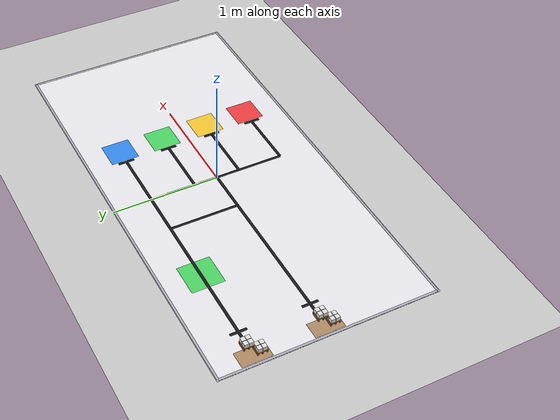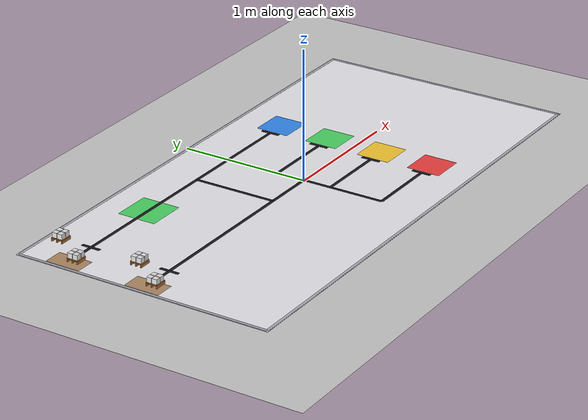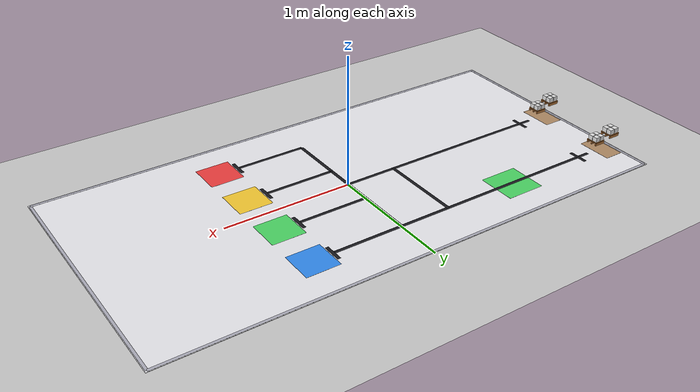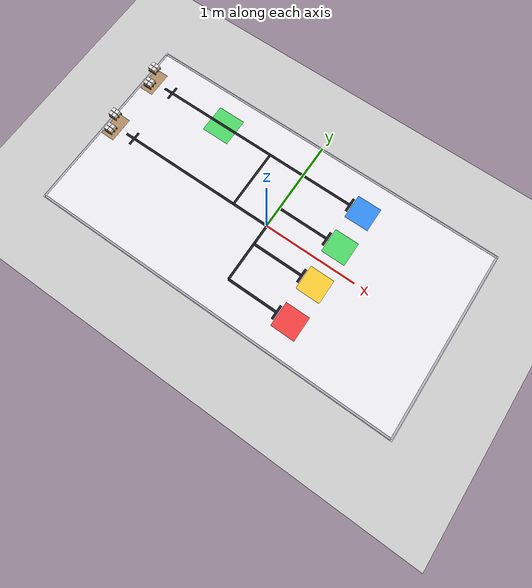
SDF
<sdf version="1.8">
 <world name="default">
  <physics name="1ms" type="ignored">
   <max_step_size>0.001</max_step_size>
   <real_time_factor>1.0</real_time_factor>
  </physics>
  <plugin filename="ignition-gazebo-physics-system" name="ignition::gazebo::systems::Physics"/>
  <plugin filename="ignition-gazebo-user-commands-system" name="ignition::gazebo::systems::UserCommands"/>
  <plugin filename="ignition-gazebo-scene-broadcaster-system" name="ignition::gazebo::systems::SceneBroadcaster"/>
  <plugin filename="ignition-gazebo-contact-system" name="ignition::gazebo::systems::Contact"/>
  <plugin filename="ignition-gazebo-sensors-system" name="ignition::gazebo::systems::Sensors">
   <render_engine>ogre2</render_engine>
  </plugin>
  <light type="directional" name="sun">
   <cast_shadows>false</cast_shadows>
   <pose>0 0 10 0 0 0</pose>
   <diffuse>0.9 0.9 0.9 1</diffuse>
   <specular>0.2 0.2 0.2 1</specular>
   <attenuation>
    <range>1000</range>
    <constant>0.9</constant>
    <linear>0.01</linear>
    <quadratic>0.001</quadratic>
   </attenuation>
   <direction>-0.5 0.1 -0.9</direction>
  </light>
  <model name="ground_plane">
   <static>true</static>
   <link name="link">
    <collision name="collision">
     <geometry><plane><normal>0 0 1</normal><size>100 100</size></plane></geometry>
     <surface><friction><ode><mu>1.0</mu><mu2>1.0</mu2></ode></friction></surface>
    </collision>
    <visual name="visual">
     <geometry><plane><normal>0 0 1</normal><size>100 100</size></plane></geometry>
     <material>
      <ambient>0.8 0.8 0.8 1</ambient>
      <diffuse>0.8 0.8 0.8 1</diffuse>
      <specular>0.8 0.8 0.8 1</specular>
     </material>
    </visual>
   </link>
  </model>
  <include><uri>model://arena_floor</uri><pose>0 0 0.0025 0 0 0</pose></include>
  <include>
   <uri>model://pallet_aluminum</uri>
   <name>pallet_aluminum_rack1_b_left</name>
   <pose>-1.894 0.580 0.0285 0 0 1.5708</pose>
  </include>
  <include>
   <uri>model://pallet_cpu</uri>
   <name>pallet_cpu_rack1_t_right</name>
   <pose>-1.894 0.700 0.1485 0 0 1.5708</pose>
  </include>
  <include>
   <uri>model://pallet_qr</uri>
   <name>pallet_qr_rack2_b_left</name>
   <pose>-1.894 -0.060 0.0285 0 0 1.5708</pose>
  </include>
  <include>
   <uri>model://pallet_chip</uri>
   <name>pallet_chip_rack2_t_right</name>
   <pose>-1.894 0.060 0.1485 0 0 1.5708</pose>
  </include>
 </world>
</sdf>

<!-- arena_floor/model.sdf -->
<sdf version="1.8">
  <model name="arena_floor">
    <static>true</static>
    <link name="link">

      <!-- 1. BASE FLOOR COLLISION & MAIN SLAB                                  -->
      <collision name="collision_floor">
        <pose>0 0 0.001 0 0 0</pose>
        <geometry>
          <box>
            <size>4.0 2.0 0.002</size>
          </box>
        </geometry>
        <surface>
          <friction>
            <ode>
              <mu>1.0</mu>
              <mu2>1.0</mu2>
            </ode>
          </friction>
        </surface>
      </collision>

      <!-- Main Floor Slab Visual (Clean Bright Canvas) -->
      <visual name="visual_floor_slab">
        <pose>0 0 0.001 0 0 0</pose>
        <geometry>
          <box>
            <size>4.0 2.0 0.002</size>
          </box>
        </geometry>
        <material>
          <ambient>0.93 0.93 0.95 1.0</ambient>
          <diffuse>0.93 0.93 0.95 1.0</diffuse>
          <specular>0.1 0.1 0.1 1.0</specular>
        </material>
      </visual>

      <!-- Outer Boundary Border -->
      <visual name="visual_border_north">
        <pose>0 0.985 0.0022 0 0 0</pose>
        <geometry><box><size>3.97 0.02 0.0003</size></box></geometry>
        <material><ambient>0.7 0.7 0.75 1</ambient><diffuse>0.7 0.7 0.75 1</diffuse></material>
      </visual>
      <visual name="visual_border_south">
        <pose>0 -0.985 0.0022 0 0 0</pose>
        <geometry><box><size>3.97 0.02 0.0003</size></box></geometry>
        <material><ambient>0.7 0.7 0.75 1</ambient><diffuse>0.7 0.7 0.75 1</diffuse></material>
      </visual>
      <visual name="visual_border_west">
        <pose>-1.985 0 0.0022 0 0 0</pose>
        <geometry><box><size>0.02 1.97 0.0003</size></box></geometry>
        <material><ambient>0.7 0.7 0.75 1</ambient><diffuse>0.7 0.7 0.75 1</diffuse></material>
      </visual>
      <visual name="visual_border_east">
        <pose>1.985 0 0.0022 0 0 0</pose>
        <geometry><box><size>0.02 1.97 0.0003</size></box></geometry>
        <material><ambient>0.7 0.7 0.75 1</ambient><diffuse>0.7 0.7 0.75 1</diffuse></material>
      </visual>

      <!-- 2. NAVIGATION TRACK LINES (Pure Geometric Black Boxes)                -->
      <!-- Lane 1 (Horizontal: Y = 0.640m, from X = -1.75m to X = +0.55m) -->
      <visual name="visual_line_lane1">
        <pose>-0.600 0.640 0.0023 0 0 0</pose>
        <geometry><box><size>2.300 0.025 0.0004</size></box></geometry>
        <material><ambient>0.10 0.10 0.12 1</ambient><diffuse>0.10 0.10 0.12 1</diffuse></material>
      </visual>

      <!-- Lane 2 (Horizontal: Y = 0.000m, from X = -1.75m to X = 0.00m) -->
      <visual name="visual_line_lane2">
        <pose>-0.875 0.000 0.0023 0 0 0</pose>
        <geometry><box><size>1.750 0.025 0.0004</size></box></geometry>
        <material><ambient>0.10 0.10 0.12 1</ambient><diffuse>0.10 0.10 0.12 1</diffuse></material>
      </visual>

      <!-- Central Switch Lane (Vertical: X = -0.400m, from Y = 0.00m to Y = +0.64m) -->
      <visual name="visual_line_switch">
        <pose>-0.400 0.320 0.0023 0 0 0</pose>
        <geometry><box><size>0.025 0.640 0.0004</size></box></geometry>
        <material><ambient>0.10 0.10 0.12 1</ambient><diffuse>0.10 0.10 0.12 1</diffuse></material>
      </visual>

      <!-- Distribution Trunk (Vertical: X = 0.000m, from Y = -0.64m to Y = +0.64m) -->
      <visual name="visual_line_dist_trunk">
        <pose>0.000 0.000 0.0023 0 0 0</pose>
        <geometry><box><size>0.025 1.280 0.0004</size></box></geometry>
        <material><ambient>0.10 0.10 0.12 1</ambient><diffuse>0.10 0.10 0.12 1</diffuse></material>
      </visual>

      <!-- Branch to Drop-Off Zone 2 (CPU: Y = +0.220m, from X = 0.00m to X = +0.55m) -->
      <visual name="visual_line_branch_z2">
        <pose>0.275 0.220 0.0023 0 0 0</pose>
        <geometry><box><size>0.550 0.025 0.0004</size></box></geometry>
        <material><ambient>0.10 0.10 0.12 1</ambient><diffuse>0.10 0.10 0.12 1</diffuse></material>
      </visual>

      <!-- Branch to Drop-Off Zone 3 (QR: Y = -0.220m, from X = 0.00m to X = +0.55m) -->
      <visual name="visual_line_branch_z3">
        <pose>0.275 -0.220 0.0023 0 0 0</pose>
        <geometry><box><size>0.550 0.025 0.0004</size></box></geometry>
        <material><ambient>0.10 0.10 0.12 1</ambient><diffuse>0.10 0.10 0.12 1</diffuse></material>
      </visual>

      <!-- Branch to Drop-Off Zone 4 (Chip: Y = -0.640m, from X = 0.00m to X = +0.55m) -->
      <visual name="visual_line_branch_z4">
        <pose>0.275 -0.640 0.0023 0 0 0</pose>
        <geometry><box><size>0.550 0.025 0.0004</size></box></geometry>
        <material><ambient>0.10 0.10 0.12 1</ambient><diffuse>0.10 0.10 0.12 1</diffuse></material>
      </visual>

      <!-- 3. STOP BARS (Cross indicator lines)                                 -->
      <!-- Stop Bar - Rack 1 -->
      <visual name="visual_stop_rack1">
        <pose>-1.650 0.640 0.0024 0 0 0</pose>
        <geometry><box><size>0.025 0.150 0.0005</size></box></geometry>
        <material><ambient>0.10 0.10 0.12 1</ambient><diffuse>0.10 0.10 0.12 1</diffuse></material>
      </visual>

      <!-- Stop Bar - Rack 2 -->
      <visual name="visual_stop_rack2">
        <pose>-1.650 0.000 0.0024 0 0 0</pose>
        <geometry><box><size>0.025 0.150 0.0005</size></box></geometry>
        <material><ambient>0.10 0.10 0.12 1</ambient><diffuse>0.10 0.10 0.12 1</diffuse></material>
      </visual>

      <!-- Stop Bar - Drop-off Zone 1 -->
      <visual name="visual_stop_drop1">
        <pose>0.550 0.640 0.0024 0 0 0</pose>
        <geometry><box><size>0.025 0.150 0.0005</size></box></geometry>
        <material><ambient>0.10 0.10 0.12 1</ambient><diffuse>0.10 0.10 0.12 1</diffuse></material>
      </visual>

      <!-- Stop Bar - Drop-off Zone 2 -->
      <visual name="visual_stop_drop2">
        <pose>0.550 0.220 0.0024 0 0 0</pose>
        <geometry><box><size>0.025 0.150 0.0005</size></box></geometry>
        <material><ambient>0.10 0.10 0.12 1</ambient><diffuse>0.10 0.10 0.12 1</diffuse></material>
      </visual>

      <!-- Stop Bar - Drop-off Zone 3 -->
      <visual name="visual_stop_drop3">
        <pose>0.550 -0.220 0.0024 0 0 0</pose>
        <geometry><box><size>0.025 0.150 0.0005</size></box></geometry>
        <material><ambient>0.10 0.10 0.12 1</ambient><diffuse>0.10 0.10 0.12 1</diffuse></material>
      </visual>

      <!-- Stop Bar - Drop-off Zone 4 -->
      <visual name="visual_stop_drop4">
        <pose>0.550 -0.640 0.0024 0 0 0</pose>
        <geometry><box><size>0.025 0.150 0.0005</size></box></geometry>
        <material><ambient>0.10 0.10 0.12 1</ambient><diffuse>0.10 0.10 0.12 1</diffuse></material>
      </visual>

      <!-- 4. RACK FOOTPRINTS & START ZONE                                      -->
      <!-- Rack 1 Base Area -->
      <visual name="visual_rack1_pad">
        <pose>-1.894 0.640 0.0021 0 0 0</pose>
        <geometry><box><size>0.15 0.27 0.0002</size></box></geometry>
        <material><ambient>0.65 0.50 0.35 1</ambient><diffuse>0.70 0.55 0.40 1</diffuse></material>
      </visual>

      <!-- Rack 2 Base Area -->
      <visual name="visual_rack2_pad">
        <pose>-1.894 0.000 0.0021 0 0 0</pose>
        <geometry><box><size>0.15 0.27 0.0002</size></box></geometry>
        <material><ambient>0.65 0.50 0.35 1</ambient><diffuse>0.70 0.55 0.40 1</diffuse></material>
      </visual>

      <!-- START ZONE (Green Pad at X = -0.985, Y = 0.640) -->
      <visual name="visual_start_pad">
        <pose>-0.985 0.640 0.0021 0 0 0</pose>
        <geometry><box><size>0.30 0.30 0.0002</size></box></geometry>
        <material><ambient>0.25 0.80 0.35 1</ambient><diffuse>0.30 0.85 0.40 1</diffuse></material>
      </visual>

      <!-- 5. 4 DROP-OFF ZONES                                                  -->
      <!-- Zone 1: Aluminum (Blue: X = +0.700, Y = +0.640) -->
      <visual name="visual_drop_zone1">
        <pose>0.700 0.640 0.0021 0 0 0</pose>
        <geometry><box><size>0.26 0.26 0.0002</size></box></geometry>
        <material><ambient>0.15 0.50 0.90 1</ambient><diffuse>0.20 0.55 0.95 1</diffuse></material>
      </visual>

      <!-- Zone 2: CPU (Green: X = +0.700, Y = +0.220) -->
      <visual name="visual_drop_zone2">
        <pose>0.700 0.220 0.0021 0 0 0</pose>
        <geometry><box><size>0.26 0.26 0.0002</size></box></geometry>
        <material><ambient>0.25 0.80 0.35 1</ambient><diffuse>0.30 0.85 0.40 1</diffuse></material>
      </visual>

      <!-- Zone 3: QR Code (Yellow: X = +0.700, Y = -0.220) -->
      <visual name="visual_drop_zone3">
        <pose>0.700 -0.220 0.0021 0 0 0</pose>
        <geometry><box><size>0.26 0.26 0.0002</size></box></geometry>
        <material><ambient>0.95 0.75 0.15 1</ambient><diffuse>0.98 0.80 0.20 1</diffuse></material>
      </visual>

      <!-- Zone 4: Chip (Red: X = +0.700, Y = -0.640) -->
      <visual name="visual_drop_zone4">
        <pose>0.700 -0.640 0.0021 0 0 0</pose>
        <geometry><box><size>0.26 0.26 0.0002</size></box></geometry>
        <material><ambient>0.90 0.20 0.20 1</ambient><diffuse>0.95 0.25 0.25 1</diffuse></material>
      </visual>

    </link>
  </model>
</sdf>

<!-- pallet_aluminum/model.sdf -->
<sdf version="1.8">
  <model name="pallet_aluminum">
    <static>false</static>
    <link name="link">
      <inertial>
        <mass>0.25</mass>
        <inertia>
          <ixx>0.0003</ixx>
          <ixy>0</ixy>
          <ixz>0</ixz>
          <iyy>0.0003</iyy>
          <iyz>0</iyz>
          <izz>0.0004</izz>
        </inertia>
      </inertial>

      <!-- ==================== PALLET STRUCTURE (PRIMITIVE BOXES) ==================== -->
      <!-- Pallet Top Deck Visual -->
      <visual name="visual_deck">
        <pose>0 0 0.023 0 0 0</pose>
        <geometry>
          <box>
            <size>0.09 0.09 0.006</size>
          </box>
        </geometry>
        <material>
          <ambient>0.75 0.5 0.25 1.0</ambient>
          <diffuse>0.82 0.55 0.28 1.0</diffuse>
          <specular>0.1 0.1 0.1 1.0</specular>
        </material>
      </visual>

      <!-- Pallet Foot 1 (Left Runner: 10mm width) -->
      <visual name="visual_foot_1">
        <pose>-0.040 0 0.010 0 0 0</pose>
        <geometry>
          <box>
            <size>0.010 0.09 0.020</size>
          </box>
        </geometry>
        <material>
          <ambient>0.65 0.42 0.20 1.0</ambient>
          <diffuse>0.72 0.46 0.22 1.0</diffuse>
          <specular>0.1 0.1 0.1 1.0</specular>
        </material>
      </visual>

      <!-- Pallet Foot 2 (Middle Runner: 10mm width) -->
      <visual name="visual_foot_2">
        <pose>0 0 0.010 0 0 0</pose>
        <geometry>
          <box>
            <size>0.010 0.09 0.020</size>
          </box>
        </geometry>
        <material>
          <ambient>0.65 0.42 0.20 1.0</ambient>
          <diffuse>0.72 0.46 0.22 1.0</diffuse>
          <specular>0.1 0.1 0.1 1.0</specular>
        </material>
      </visual>

      <!-- Pallet Foot 3 (Right Runner: 10mm width) -->
      <visual name="visual_foot_3">
        <pose>0.040 0 0.010 0 0 0</pose>
        <geometry>
          <box>
            <size>0.010 0.09 0.020</size>
          </box>
        </geometry>
        <material>
          <ambient>0.65 0.42 0.20 1.0</ambient>
          <diffuse>0.72 0.46 0.22 1.0</diffuse>
          <specular>0.1 0.1 0.1 1.0</specular>
        </material>
      </visual>

      <!-- ==================== PALLET COLLISIONS ==================== -->
      <!-- Pallet Top Deck Collision -->
      <collision name="collision_deck">
        <pose>0 0 0.023 0 0 0</pose>
        <geometry>
          <box>
            <size>0.09 0.09 0.006</size>
          </box>
        </geometry>
        <surface>
          <friction>
            <ode>
              <mu>1.2</mu>
              <mu2>1.2</mu2>
            </ode>
          </friction>
        </surface>
      </collision>

      <!-- Pallet Foot Collisions (Left, Middle, Right Runners: 10mm) -->
      <collision name="collision_foot_1">
        <pose>-0.040 0 0.010 0 0 0</pose>
        <geometry>
          <box>
            <size>0.010 0.09 0.020</size>
          </box>
        </geometry>
      </collision>
      <collision name="collision_foot_2">
        <pose>0 0 0.010 0 0 0</pose>
        <geometry>
          <box>
            <size>0.010 0.09 0.020</size>
          </box>
        </geometry>
      </collision>
      <collision name="collision_foot_3">
        <pose>0.040 0 0.010 0 0 0</pose>
        <geometry>
          <box>
            <size>0.010 0.09 0.020</size>
          </box>
        </geometry>
      </collision>

      <!-- ==================== 4 GOODS BLOCKS VISUALS ==================== -->
      <!-- Block 1: Front-Left -->
      <visual name="visual_block_1">
        <pose>-0.021 -0.021 0.0452 0 0 0</pose>
        <geometry>
          <box>
            <size>0.038 0.038 0.038</size>
          </box>
        </geometry>
        <material>
          <ambient>0.9 0.9 0.9 1.0</ambient>
          <diffuse>0.9 0.9 0.9 1.0</diffuse>
          <pbr>
            <metal>
              <albedo_map>model://pallet_aluminum/materials/textures/block_0.png</albedo_map>
              <roughness>0.3</roughness>
              <metalness>0.0</metalness>
            </metal>
          </pbr>
        </material>
      </visual>

      <!-- Block 2: Front-Right -->
      <visual name="visual_block_2">
        <pose>0.021 -0.021 0.0452 0 0 0</pose>
        <geometry>
          <box>
            <size>0.038 0.038 0.038</size>
          </box>
        </geometry>
        <material>
          <ambient>0.9 0.9 0.9 1.0</ambient>
          <diffuse>0.9 0.9 0.9 1.0</diffuse>
          <pbr>
            <metal>
              <albedo_map>model://pallet_aluminum/materials/textures/block_0.png</albedo_map>
              <roughness>0.3</roughness>
              <metalness>0.0</metalness>
            </metal>
          </pbr>
        </material>
      </visual>

      <!-- Block 3: Rear-Left -->
      <visual name="visual_block_3">
        <pose>-0.021 0.021 0.0452 0 0 0</pose>
        <geometry>
          <box>
            <size>0.038 0.038 0.038</size>
          </box>
        </geometry>
        <material>
          <ambient>0.9 0.9 0.9 1.0</ambient>
          <diffuse>0.9 0.9 0.9 1.0</diffuse>
          <pbr>
            <metal>
              <albedo_map>model://pallet_aluminum/materials/textures/block_0.png</albedo_map>
              <roughness>0.3</roughness>
              <metalness>0.0</metalness>
            </metal>
          </pbr>
        </material>
      </visual>

      <!-- Block 4: Rear-Right -->
      <visual name="visual_block_4">
        <pose>0.021 0.021 0.0452 0 0 0</pose>
        <geometry>
          <box>
            <size>0.038 0.038 0.038</size>
          </box>
        </geometry>
        <material>
          <ambient>0.9 0.9 0.9 1.0</ambient>
          <diffuse>0.9 0.9 0.9 1.0</diffuse>
          <pbr>
            <metal>
              <albedo_map>model://pallet_aluminum/materials/textures/block_0.png</albedo_map>
              <roughness>0.3</roughness>
              <metalness>0.0</metalness>
            </metal>
          </pbr>
        </material>
      </visual>

      <!-- Consolidated Collision for All 4 Blocks (Ultra-Fast Physics Solver) -->
      <collision name="collision_blocks">
        <pose>0 0 0.0452 0 0 0</pose>
        <geometry>
          <box>
            <size>0.08 0.08 0.038</size>
          </box>
        </geometry>
      </collision>
    </link>
  </model>
</sdf>

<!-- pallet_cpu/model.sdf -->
<sdf version="1.8">
  <model name="pallet_cpu">
    <static>false</static>
    <link name="link">
      <inertial>
        <mass>0.25</mass>
        <inertia>
          <ixx>0.0003</ixx>
          <ixy>0</ixy>
          <ixz>0</ixz>
          <iyy>0.0003</iyy>
          <iyz>0</iyz>
          <izz>0.0004</izz>
        </inertia>
      </inertial>

      <!-- ==================== PALLET STRUCTURE (PRIMITIVE BOXES) ==================== -->
      <!-- Pallet Top Deck Visual -->
      <visual name="visual_deck">
        <pose>0 0 0.023 0 0 0</pose>
        <geometry>
          <box>
            <size>0.09 0.09 0.006</size>
          </box>
        </geometry>
        <material>
          <ambient>0.75 0.5 0.25 1.0</ambient>
          <diffuse>0.82 0.55 0.28 1.0</diffuse>
          <specular>0.1 0.1 0.1 1.0</specular>
        </material>
      </visual>

      <!-- Pallet Foot 1 (Left Runner: 10mm width) -->
      <visual name="visual_foot_1">
        <pose>-0.040 0 0.010 0 0 0</pose>
        <geometry>
          <box>
            <size>0.010 0.09 0.020</size>
          </box>
        </geometry>
        <material>
          <ambient>0.65 0.42 0.20 1.0</ambient>
          <diffuse>0.72 0.46 0.22 1.0</diffuse>
          <specular>0.1 0.1 0.1 1.0</specular>
        </material>
      </visual>

      <!-- Pallet Foot 2 (Middle Runner: 10mm width) -->
      <visual name="visual_foot_2">
        <pose>0 0 0.010 0 0 0</pose>
        <geometry>
          <box>
            <size>0.010 0.09 0.020</size>
          </box>
        </geometry>
        <material>
          <ambient>0.65 0.42 0.20 1.0</ambient>
          <diffuse>0.72 0.46 0.22 1.0</diffuse>
          <specular>0.1 0.1 0.1 1.0</specular>
        </material>
      </visual>

      <!-- Pallet Foot 3 (Right Runner: 10mm width) -->
      <visual name="visual_foot_3">
        <pose>0.040 0 0.010 0 0 0</pose>
        <geometry>
          <box>
            <size>0.010 0.09 0.020</size>
          </box>
        </geometry>
        <material>
          <ambient>0.65 0.42 0.20 1.0</ambient>
          <diffuse>0.72 0.46 0.22 1.0</diffuse>
          <specular>0.1 0.1 0.1 1.0</specular>
        </material>
      </visual>

      <!-- ==================== PALLET COLLISIONS ==================== -->
      <!-- Pallet Top Deck Collision -->
      <collision name="collision_deck">
        <pose>0 0 0.023 0 0 0</pose>
        <geometry>
          <box>
            <size>0.09 0.09 0.006</size>
          </box>
        </geometry>
        <surface>
          <friction>
            <ode>
              <mu>1.2</mu>
              <mu2>1.2</mu2>
            </ode>
          </friction>
        </surface>
      </collision>

      <!-- Pallet Foot Collisions (Left, Middle, Right Runners: 10mm) -->
      <collision name="collision_foot_1">
        <pose>-0.040 0 0.010 0 0 0</pose>
        <geometry>
          <box>
            <size>0.010 0.09 0.020</size>
          </box>
        </geometry>
      </collision>
      <collision name="collision_foot_2">
        <pose>0 0 0.010 0 0 0</pose>
        <geometry>
          <box>
            <size>0.010 0.09 0.020</size>
          </box>
        </geometry>
      </collision>
      <collision name="collision_foot_3">
        <pose>0.040 0 0.010 0 0 0</pose>
        <geometry>
          <box>
            <size>0.010 0.09 0.020</size>
          </box>
        </geometry>
      </collision>

      <!-- ==================== 4 GOODS BLOCKS VISUALS ==================== -->
      <!-- Block 1: Front-Left -->
      <visual name="visual_block_1">
        <pose>-0.021 -0.021 0.0452 0 0 0</pose>
        <geometry>
          <box>
            <size>0.038 0.038 0.038</size>
          </box>
        </geometry>
        <material>
          <ambient>0.9 0.9 0.9 1.0</ambient>
          <diffuse>0.9 0.9 0.9 1.0</diffuse>
          <pbr>
            <metal>
              <albedo_map>model://pallet_cpu/materials/textures/block_1.png</albedo_map>
              <roughness>0.3</roughness>
              <metalness>0.0</metalness>
            </metal>
          </pbr>
        </material>
      </visual>

      <!-- Block 2: Front-Right -->
      <visual name="visual_block_2">
        <pose>0.021 -0.021 0.0452 0 0 0</pose>
        <geometry>
          <box>
            <size>0.038 0.038 0.038</size>
          </box>
        </geometry>
        <material>
          <ambient>0.9 0.9 0.9 1.0</ambient>
          <diffuse>0.9 0.9 0.9 1.0</diffuse>
          <pbr>
            <metal>
              <albedo_map>model://pallet_cpu/materials/textures/block_1.png</albedo_map>
              <roughness>0.3</roughness>
              <metalness>0.0</metalness>
            </metal>
          </pbr>
        </material>
      </visual>

      <!-- Block 3: Rear-Left -->
      <visual name="visual_block_3">
        <pose>-0.021 0.021 0.0452 0 0 0</pose>
        <geometry>
          <box>
            <size>0.038 0.038 0.038</size>
          </box>
        </geometry>
        <material>
          <ambient>0.9 0.9 0.9 1.0</ambient>
          <diffuse>0.9 0.9 0.9 1.0</diffuse>
          <pbr>
            <metal>
              <albedo_map>model://pallet_cpu/materials/textures/block_1.png</albedo_map>
              <roughness>0.3</roughness>
              <metalness>0.0</metalness>
            </metal>
          </pbr>
        </material>
      </visual>

      <!-- Block 4: Rear-Right -->
      <visual name="visual_block_4">
        <pose>0.021 0.021 0.0452 0 0 0</pose>
        <geometry>
          <box>
            <size>0.038 0.038 0.038</size>
          </box>
        </geometry>
        <material>
          <ambient>0.9 0.9 0.9 1.0</ambient>
          <diffuse>0.9 0.9 0.9 1.0</diffuse>
          <pbr>
            <metal>
              <albedo_map>model://pallet_cpu/materials/textures/block_1.png</albedo_map>
              <roughness>0.3</roughness>
              <metalness>0.0</metalness>
            </metal>
          </pbr>
        </material>
      </visual>

      <!-- Consolidated Collision for All 4 Blocks (Ultra-Fast Physics Solver) -->
      <collision name="collision_blocks">
        <pose>0 0 0.0452 0 0 0</pose>
        <geometry>
          <box>
            <size>0.08 0.08 0.038</size>
          </box>
        </geometry>
      </collision>
    </link>
  </model>
</sdf>

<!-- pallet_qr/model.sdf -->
<sdf version="1.8">
  <model name="pallet_qr">
    <static>false</static>
    <link name="link">
      <inertial>
        <mass>0.25</mass>
        <inertia>
          <ixx>0.0003</ixx>
          <ixy>0</ixy>
          <ixz>0</ixz>
          <iyy>0.0003</iyy>
          <iyz>0</iyz>
          <izz>0.0004</izz>
        </inertia>
      </inertial>

      <!-- ==================== PALLET STRUCTURE (PRIMITIVE BOXES) ==================== -->
      <!-- Pallet Top Deck Visual -->
      <visual name="visual_deck">
        <pose>0 0 0.023 0 0 0</pose>
        <geometry>
          <box>
            <size>0.09 0.09 0.006</size>
          </box>
        </geometry>
        <material>
          <ambient>0.75 0.5 0.25 1.0</ambient>
          <diffuse>0.82 0.55 0.28 1.0</diffuse>
          <specular>0.1 0.1 0.1 1.0</specular>
        </material>
      </visual>

      <!-- Pallet Foot 1 (Left Runner: 10mm width) -->
      <visual name="visual_foot_1">
        <pose>-0.040 0 0.010 0 0 0</pose>
        <geometry>
          <box>
            <size>0.010 0.09 0.020</size>
          </box>
        </geometry>
        <material>
          <ambient>0.65 0.42 0.20 1.0</ambient>
          <diffuse>0.72 0.46 0.22 1.0</diffuse>
          <specular>0.1 0.1 0.1 1.0</specular>
        </material>
      </visual>

      <!-- Pallet Foot 2 (Middle Runner: 10mm width) -->
      <visual name="visual_foot_2">
        <pose>0 0 0.010 0 0 0</pose>
        <geometry>
          <box>
            <size>0.010 0.09 0.020</size>
          </box>
        </geometry>
        <material>
          <ambient>0.65 0.42 0.20 1.0</ambient>
          <diffuse>0.72 0.46 0.22 1.0</diffuse>
          <specular>0.1 0.1 0.1 1.0</specular>
        </material>
      </visual>

      <!-- Pallet Foot 3 (Right Runner: 10mm width) -->
      <visual name="visual_foot_3">
        <pose>0.040 0 0.010 0 0 0</pose>
        <geometry>
          <box>
            <size>0.010 0.09 0.020</size>
          </box>
        </geometry>
        <material>
          <ambient>0.65 0.42 0.20 1.0</ambient>
          <diffuse>0.72 0.46 0.22 1.0</diffuse>
          <specular>0.1 0.1 0.1 1.0</specular>
        </material>
      </visual>

      <!-- ==================== PALLET COLLISIONS ==================== -->
      <!-- Pallet Top Deck Collision -->
      <collision name="collision_deck">
        <pose>0 0 0.023 0 0 0</pose>
        <geometry>
          <box>
            <size>0.09 0.09 0.006</size>
          </box>
        </geometry>
        <surface>
          <friction>
            <ode>
              <mu>1.2</mu>
              <mu2>1.2</mu2>
            </ode>
          </friction>
        </surface>
      </collision>

      <!-- Pallet Foot Collisions (Left, Middle, Right Runners: 10mm) -->
      <collision name="collision_foot_1">
        <pose>-0.040 0 0.010 0 0 0</pose>
        <geometry>
          <box>
            <size>0.010 0.09 0.020</size>
          </box>
        </geometry>
      </collision>
      <collision name="collision_foot_2">
        <pose>0 0 0.010 0 0 0</pose>
        <geometry>
          <box>
            <size>0.010 0.09 0.020</size>
          </box>
        </geometry>
      </collision>
      <collision name="collision_foot_3">
        <pose>0.040 0 0.010 0 0 0</pose>
        <geometry>
          <box>
            <size>0.010 0.09 0.020</size>
          </box>
        </geometry>
      </collision>

      <!-- ==================== 4 GOODS BLOCKS VISUALS ==================== -->
      <!-- Block 1: Front-Left -->
      <visual name="visual_block_1">
        <pose>-0.021 -0.021 0.0452 0 0 0</pose>
        <geometry>
          <box>
            <size>0.038 0.038 0.038</size>
          </box>
        </geometry>
        <material>
          <ambient>0.9 0.9 0.9 1.0</ambient>
          <diffuse>0.9 0.9 0.9 1.0</diffuse>
          <pbr>
            <metal>
              <albedo_map>model://pallet_qr/materials/textures/block_2.png</albedo_map>
              <roughness>0.3</roughness>
              <metalness>0.0</metalness>
            </metal>
          </pbr>
        </material>
      </visual>

      <!-- Block 2: Front-Right -->
      <visual name="visual_block_2">
        <pose>0.021 -0.021 0.0452 0 0 0</pose>
        <geometry>
          <box>
            <size>0.038 0.038 0.038</size>
          </box>
        </geometry>
        <material>
          <ambient>0.9 0.9 0.9 1.0</ambient>
          <diffuse>0.9 0.9 0.9 1.0</diffuse>
          <pbr>
            <metal>
              <albedo_map>model://pallet_qr/materials/textures/block_2.png</albedo_map>
              <roughness>0.3</roughness>
              <metalness>0.0</metalness>
            </metal>
          </pbr>
        </material>
      </visual>

      <!-- Block 3: Rear-Left -->
      <visual name="visual_block_3">
        <pose>-0.021 0.021 0.0452 0 0 0</pose>
        <geometry>
          <box>
            <size>0.038 0.038 0.038</size>
          </box>
        </geometry>
        <material>
          <ambient>0.9 0.9 0.9 1.0</ambient>
          <diffuse>0.9 0.9 0.9 1.0</diffuse>
          <pbr>
            <metal>
              <albedo_map>model://pallet_qr/materials/textures/block_2.png</albedo_map>
              <roughness>0.3</roughness>
              <metalness>0.0</metalness>
            </metal>
          </pbr>
        </material>
      </visual>

      <!-- Block 4: Rear-Right -->
      <visual name="visual_block_4">
        <pose>0.021 0.021 0.0452 0 0 0</pose>
        <geometry>
          <box>
            <size>0.038 0.038 0.038</size>
          </box>
        </geometry>
        <material>
          <ambient>0.9 0.9 0.9 1.0</ambient>
          <diffuse>0.9 0.9 0.9 1.0</diffuse>
          <pbr>
            <metal>
              <albedo_map>model://pallet_qr/materials/textures/block_2.png</albedo_map>
              <roughness>0.3</roughness>
              <metalness>0.0</metalness>
            </metal>
          </pbr>
        </material>
      </visual>

      <!-- Consolidated Collision for All 4 Blocks (Ultra-Fast Physics Solver) -->
      <collision name="collision_blocks">
        <pose>0 0 0.0452 0 0 0</pose>
        <geometry>
          <box>
            <size>0.08 0.08 0.038</size>
          </box>
        </geometry>
      </collision>
    </link>
  </model>
</sdf>

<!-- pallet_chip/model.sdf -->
<sdf version="1.8">
  <model name="pallet_chip">
    <static>false</static>
    <link name="link">
      <inertial>
        <mass>0.25</mass>
        <inertia>
          <ixx>0.0003</ixx>
          <ixy>0</ixy>
          <ixz>0</ixz>
          <iyy>0.0003</iyy>
          <iyz>0</iyz>
          <izz>0.0004</izz>
        </inertia>
      </inertial>

      <!-- ==================== PALLET STRUCTURE (PRIMITIVE BOXES) ==================== -->
      <!-- Pallet Top Deck Visual -->
      <visual name="visual_deck">
        <pose>0 0 0.023 0 0 0</pose>
        <geometry>
          <box>
            <size>0.09 0.09 0.006</size>
          </box>
        </geometry>
        <material>
          <ambient>0.75 0.5 0.25 1.0</ambient>
          <diffuse>0.82 0.55 0.28 1.0</diffuse>
          <specular>0.1 0.1 0.1 1.0</specular>
        </material>
      </visual>

      <!-- Pallet Foot 1 (Left Runner: 10mm width) -->
      <visual name="visual_foot_1">
        <pose>-0.040 0 0.010 0 0 0</pose>
        <geometry>
          <box>
            <size>0.010 0.09 0.020</size>
          </box>
        </geometry>
        <material>
          <ambient>0.65 0.42 0.20 1.0</ambient>
          <diffuse>0.72 0.46 0.22 1.0</diffuse>
          <specular>0.1 0.1 0.1 1.0</specular>
        </material>
      </visual>

      <!-- Pallet Foot 2 (Middle Runner: 10mm width) -->
      <visual name="visual_foot_2">
        <pose>0 0 0.010 0 0 0</pose>
        <geometry>
          <box>
            <size>0.010 0.09 0.020</size>
          </box>
        </geometry>
        <material>
          <ambient>0.65 0.42 0.20 1.0</ambient>
          <diffuse>0.72 0.46 0.22 1.0</diffuse>
          <specular>0.1 0.1 0.1 1.0</specular>
        </material>
      </visual>

      <!-- Pallet Foot 3 (Right Runner: 10mm width) -->
      <visual name="visual_foot_3">
        <pose>0.040 0 0.010 0 0 0</pose>
        <geometry>
          <box>
            <size>0.010 0.09 0.020</size>
          </box>
        </geometry>
        <material>
          <ambient>0.65 0.42 0.20 1.0</ambient>
          <diffuse>0.72 0.46 0.22 1.0</diffuse>
          <specular>0.1 0.1 0.1 1.0</specular>
        </material>
      </visual>

      <!-- ==================== PALLET COLLISIONS ==================== -->
      <!-- Pallet Top Deck Collision -->
      <collision name="collision_deck">
        <pose>0 0 0.023 0 0 0</pose>
        <geometry>
          <box>
            <size>0.09 0.09 0.006</size>
          </box>
        </geometry>
        <surface>
          <friction>
            <ode>
              <mu>1.2</mu>
              <mu2>1.2</mu2>
            </ode>
          </friction>
        </surface>
      </collision>

      <!-- Pallet Foot Collisions (Left, Middle, Right Runners: 10mm) -->
      <collision name="collision_foot_1">
        <pose>-0.040 0 0.010 0 0 0</pose>
        <geometry>
          <box>
            <size>0.010 0.09 0.020</size>
          </box>
        </geometry>
      </collision>
      <collision name="collision_foot_2">
        <pose>0 0 0.010 0 0 0</pose>
        <geometry>
          <box>
            <size>0.010 0.09 0.020</size>
          </box>
        </geometry>
      </collision>
      <collision name="collision_foot_3">
        <pose>0.040 0 0.010 0 0 0</pose>
        <geometry>
          <box>
            <size>0.010 0.09 0.020</size>
          </box>
        </geometry>
      </collision>

      <!-- ==================== 4 GOODS BLOCKS VISUALS ==================== -->
      <!-- Block 1: Front-Left -->
      <visual name="visual_block_1">
        <pose>-0.021 -0.021 0.0452 0 0 0</pose>
        <geometry>
          <box>
            <size>0.038 0.038 0.038</size>
          </box>
        </geometry>
        <material>
          <ambient>0.9 0.9 0.9 1.0</ambient>
          <diffuse>0.9 0.9 0.9 1.0</diffuse>
          <pbr>
            <metal>
              <albedo_map>model://pallet_chip/materials/textures/block_3.png</albedo_map>
              <roughness>0.3</roughness>
              <metalness>0.0</metalness>
            </metal>
          </pbr>
        </material>
      </visual>

      <!-- Block 2: Front-Right -->
      <visual name="visual_block_2">
        <pose>0.021 -0.021 0.0452 0 0 0</pose>
        <geometry>
          <box>
            <size>0.038 0.038 0.038</size>
          </box>
        </geometry>
        <material>
          <ambient>0.9 0.9 0.9 1.0</ambient>
          <diffuse>0.9 0.9 0.9 1.0</diffuse>
          <pbr>
            <metal>
              <albedo_map>model://pallet_chip/materials/textures/block_3.png</albedo_map>
              <roughness>0.3</roughness>
              <metalness>0.0</metalness>
            </metal>
          </pbr>
        </material>
      </visual>

      <!-- Block 3: Rear-Left -->
      <visual name="visual_block_3">
        <pose>-0.021 0.021 0.0452 0 0 0</pose>
        <geometry>
          <box>
            <size>0.038 0.038 0.038</size>
          </box>
        </geometry>
        <material>
          <ambient>0.9 0.9 0.9 1.0</ambient>
          <diffuse>0.9 0.9 0.9 1.0</diffuse>
          <pbr>
            <metal>
              <albedo_map>model://pallet_chip/materials/textures/block_3.png</albedo_map>
              <roughness>0.3</roughness>
              <metalness>0.0</metalness>
            </metal>
          </pbr>
        </material>
      </visual>

      <!-- Block 4: Rear-Right -->
      <visual name="visual_block_4">
        <pose>0.021 0.021 0.0452 0 0 0</pose>
        <geometry>
          <box>
            <size>0.038 0.038 0.038</size>
          </box>
        </geometry>
        <material>
          <ambient>0.9 0.9 0.9 1.0</ambient>
          <diffuse>0.9 0.9 0.9 1.0</diffuse>
          <pbr>
            <metal>
              <albedo_map>model://pallet_chip/materials/textures/block_3.png</albedo_map>
              <roughness>0.3</roughness>
              <metalness>0.0</metalness>
            </metal>
          </pbr>
        </material>
      </visual>

      <!-- Consolidated Collision for All 4 Blocks (Ultra-Fast Physics Solver) -->
      <collision name="collision_blocks">
        <pose>0 0 0.0452 0 0 0</pose>
        <geometry>
          <box>
            <size>0.08 0.08 0.038</size>
          </box>
        </geometry>
      </collision>
    </link>
  </model>
</sdf>
